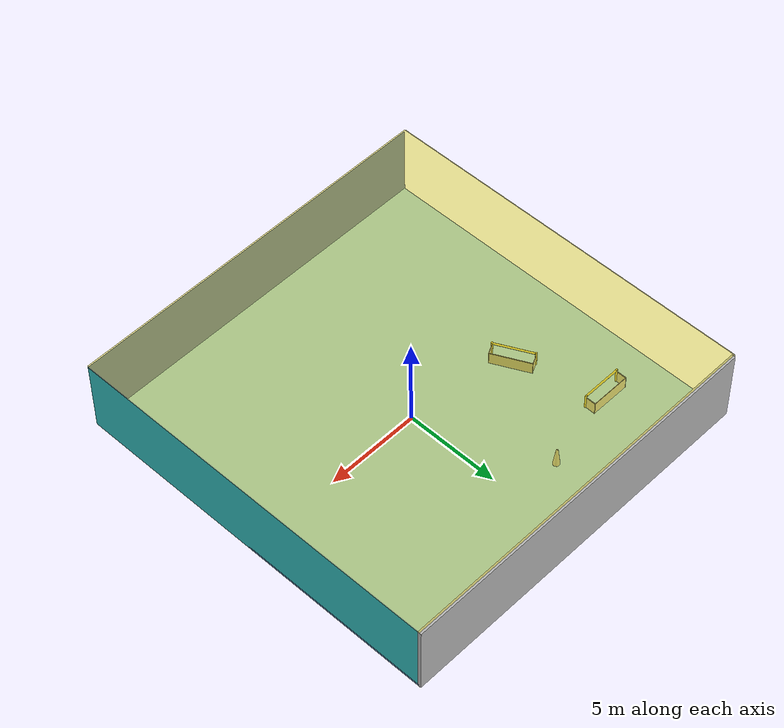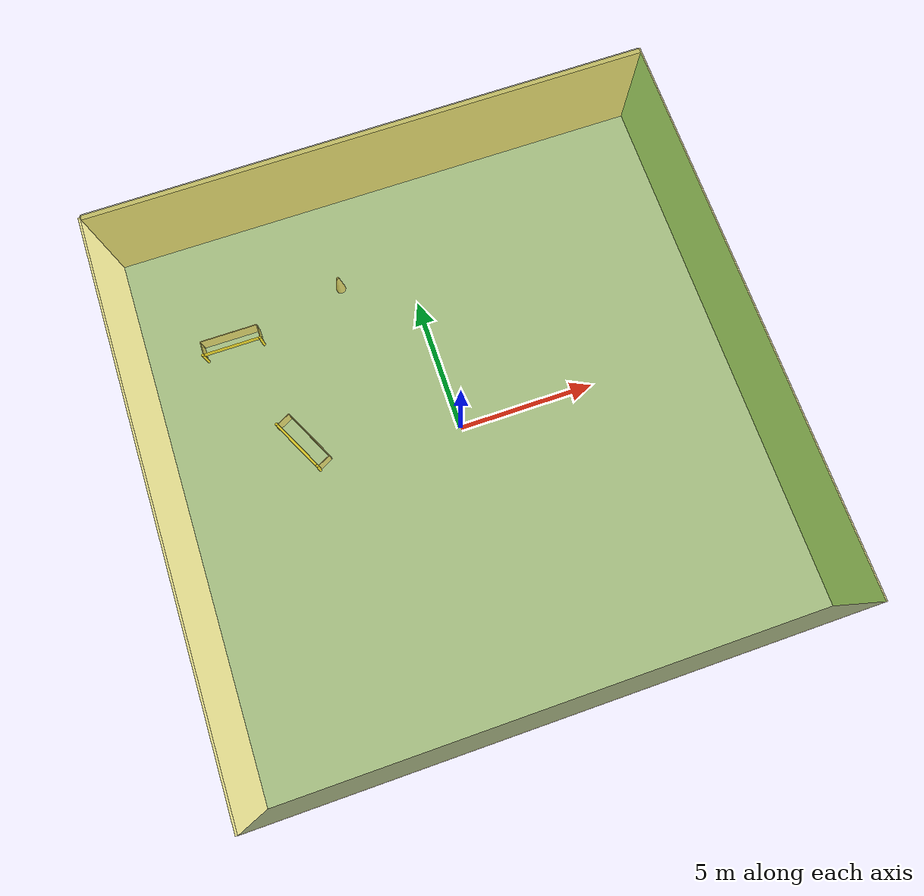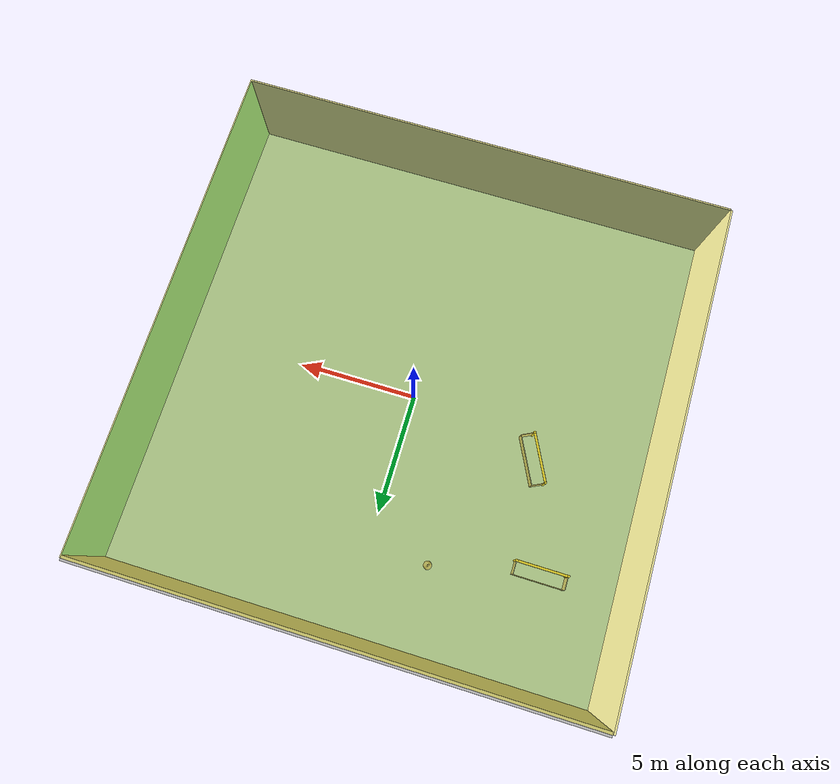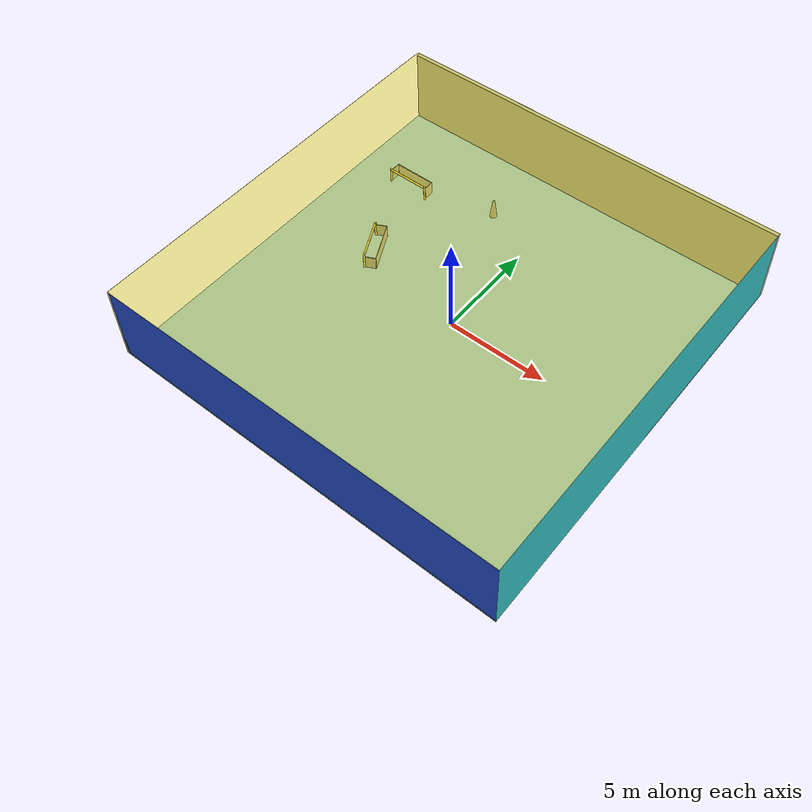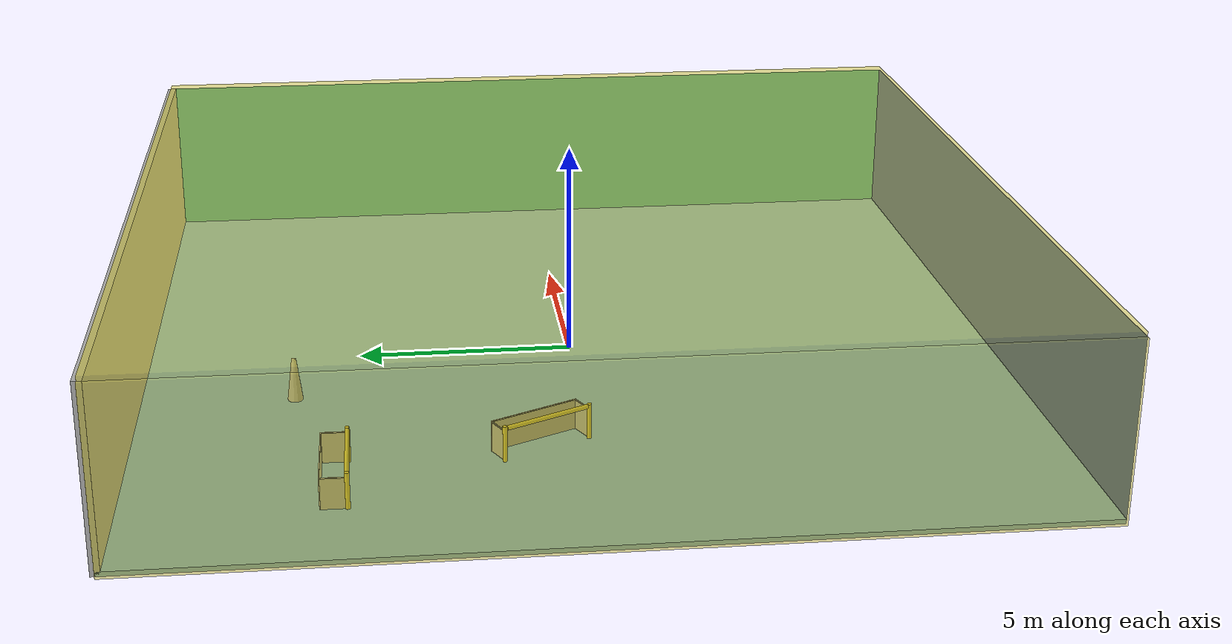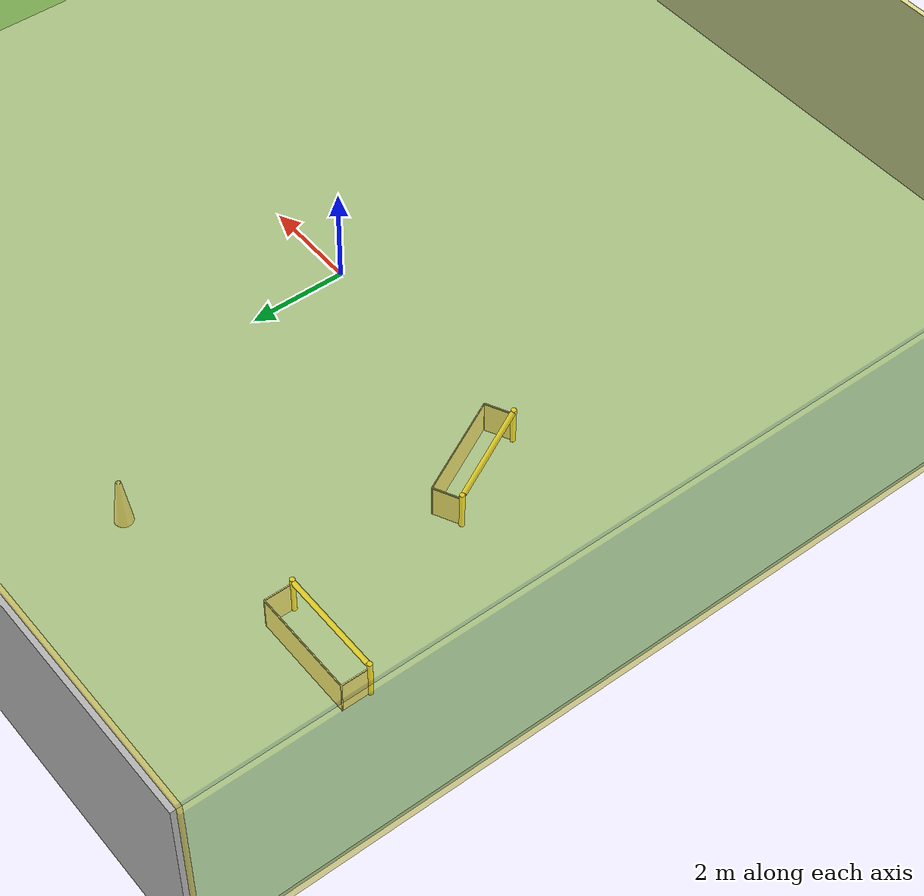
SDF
<sdf version="1.4">
 <world name="default">
  <physics type="ode">
   <max_step_size>0.001</max_step_size>
   <real_time_factor>1</real_time_factor>
   <real_time_update_rate>1000</real_time_update_rate>
   <gravity>0 0 -9.8</gravity>
  </physics>
  <scene><ambient>0.4 0.4 0.4 1</ambient><background>0.7 0.7 0.7 1</background><shadows>1</shadows></scene>
  <model name="Surrounding">
   <static>1</static>
   <link name="Ceiling">
    <collision name="Ceiling_Collision"><geometry><box><size>20 20 0.1</size></box></geometry></collision>
    <visual name="Ceiling_Visual">
     <geometry><box><size>20 20 0.1</size></box></geometry>
     <material>
      <script>
       <uri>file://media/materials/scripts/gazebo.material</uri>
       <name>Gazebo/YellowTransparent</name>
      </script>
     </material>
    </visual>
    <pose>0 0 4.05 0 0 0</pose>
   </link>
   <link name="Wall_South">
    <collision name="Wall_South_Collision">
     <geometry><box><size>20 0 4</size></box></geometry>
     <pose>0 0 2 0 -0 0</pose>
    </collision>
    <visual name="Wall_South_Visual">
     <pose>0 0 2 0 -0 0</pose>
     <geometry><box><size>20 0 4</size></box></geometry>
     <material>
      <script><uri>file://media/materials/scripts/gazebo.material</uri><name>Gazebo/BlueGlow</name></script>
     </material>
    </visual>
    <velocity_decay><linear>0</linear><angular>0</angular></velocity_decay>
    <pose>0 -10 0 0 -0 0</pose>
   </link>
   <link name="Wall_East">
    <collision name="Wall_21_Collision">
     <geometry><box><size>20 0 4</size></box></geometry>
     <pose>0 0 2 0 -0 0</pose>
    </collision>
    <visual name="Wall_21_Visual">
     <pose>0 0 2 0 -0 0</pose>
     <geometry><box><size>20 0 4</size></box></geometry>
     <material>
      <script>
       <uri>file://media/materials/scripts/gazebo.material</uri>
       <name>Gazebo/TurquoiseGlowOutline</name>
      </script>
     </material>
    </visual>
    <velocity_decay><linear>0</linear><angular>0</angular></velocity_decay>
    <pose>10 0 0 0 -0 1.5708</pose>
   </link>
   <link name="Wall_North">
    <collision name="Wall_22_Collision">
     <geometry><box><size>20 0.2 4</size></box></geometry>
     <pose>0 0 2 0 -0 0</pose>
    </collision>
    <visual name="Wall_22_Visual">
     <pose>0 0 2 0 -0 0</pose>
     <geometry><box><size>20 0.2 4</size></box></geometry>
     <material>
      <script><uri>file://media/materials/scripts/gazebo.material</uri><name>Gazebo/LightOn</name></script>
     </material>
    </visual>
    <velocity_decay><linear>0</linear><angular>0</angular></velocity_decay>
    <pose>0 10 0 0 -0 0</pose>
   </link>
   <link name="Wall_West">
    <collision name="Wall_23_Collision">
     <geometry><box><size>20 0.2 4</size></box></geometry>
     <pose>0 0 2 0 -0 0</pose>
    </collision>
    <visual name="Wall_23_Visual">
     <pose>0 0 2 0 -0 0</pose>
     <geometry><box><size>20 0.2 4</size></box></geometry>
     <material>
      <script>
       <uri>file://media/materials/scripts/gazebo.material</uri>
       <name>Gazebo/YellowTransparent</name>
      </script>
     </material>
    </visual>
    <velocity_decay><linear>0</linear><angular>0</angular></velocity_decay>
    <pose>-10 0 0 0 0 -1.5708</pose>
   </link>
   <link name="Ground_link">
    <collision name="collision">
     <pose>0 0 .05 0 -0 0</pose>
     <geometry><box><size>20 20 0.1</size></box></geometry>
    </collision>
    <visual name="visual">
     <pose>0 0 .05 0 -0 0</pose>
     <geometry><box><size>20 20 0.1</size></box></geometry>
     <material>
      <script><uri>file://media/materials/scripts/gazebo.material</uri><name>Gazebo/SkyBlue</name></script>
     </material>
    </visual>
   </link>
   <static>1</static>
  </model>
  <spherical_coordinates>
   <surface_model>EARTH_WGS84</surface_model>
   <latitude_deg>0</latitude_deg>
   <longitude_deg>0</longitude_deg>
   <elevation>0</elevation>
   <heading_deg>0</heading_deg>
  </spherical_coordinates>
  <light name="lightball_0" type="diffuse">
   <diffuse>0.8 0.8 0.8 1</diffuse>
   <specular>0.2 0.2 0.2 1</specular>
   <attenuation>
    <range>100</range>
    <constant>0.7</constant>
    <linear>0.01</linear>
    <quadratic>0.001</quadratic>
   </attenuation>
   <direction>-0.5 0.1 -0.9</direction>
   <pose>0.304020184023 2.25630539531 0.809698346113 0 0 0</pose>
  </light>
  <light name="lightball_1" type="diffuse">
   <diffuse>0.8 0.8 0.8 1</diffuse>
   <specular>0.2 0.2 0.2 1</specular>
   <attenuation>
    <range>100</range>
    <constant>0.7</constant>
    <linear>0.01</linear>
    <quadratic>0.001</quadratic>
   </attenuation>
   <direction>-0.5 0.1 -0.9</direction>
   <pose>1.66893093115 0.936522184332 1.27780610469 0 0 0</pose>
  </light>
  <light name="lightball_2" type="diffuse">
   <diffuse>0.8 0.8 0.8 1</diffuse>
   <specular>0.2 0.2 0.2 1</specular>
   <attenuation>
    <range>100</range>
    <constant>0.7</constant>
    <linear>0.01</linear>
    <quadratic>0.001</quadratic>
   </attenuation>
   <direction>-0.5 0.1 -0.9</direction>
   <pose>-6.35567395549 0.960053771814 3.07221864896 0 0 0</pose>
  </light>
  <include>
   <uri>model://robocup_3Dsim_goal</uri>
   <pose>-6.88338610877 5.27948017241 0 0 0 1.56763644924</pose>
  </include>
  <include>
   <uri>model://robocup_3Dsim_goal</uri>
   <pose>-5.67840593133 1.06393401087 0 0 0 0.461363150582</pose>
  </include>
  <include>
   <uri>model://construction_cone</uri>
   <pose>-2.53191604408 6.46480249487 0 0 0 2.46432056923</pose>
  </include>
 </world>
</sdf>

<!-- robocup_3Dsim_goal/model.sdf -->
<sdf version="1.5">
  <model name="robocup_3d_goal">
    <static>true</static>
    <link name="left_post">
      <pose>0 1.05 0.45 0 0 0</pose>
      <collision name="collision">
        <geometry>
          <cylinder>
            <radius>0.05</radius>
            <length>0.9</length>
          </cylinder>
        </geometry>
      </collision>
      <visual name="visual">
        <geometry>
          <cylinder>
            <radius>0.05</radius>
            <length>0.9</length>
          </cylinder>
        </geometry>
        <material>
          <script>
            <uri>file://media/materials/scripts/gazebo.material</uri>
            <name>Gazebo/ZincYellow</name>
          </script>
        </material>
      </visual>
    </link>
    <link name="left_support_horiz_lower">
      <pose>0.30 1.05 0.01 0 0 0</pose>
      <collision name="collision">
        <geometry>
          <box>
            <size>0.50 0.02 0.02</size>
          </box>
        </geometry>
      </collision>
      <visual name="visual">
        <geometry>
          <box>
            <size>0.50 0.02 0.02</size>
          </box>
        </geometry>
        <material>
          <script>
            <uri>file://media/materials/scripts/gazebo.material</uri>
            <name>Gazebo/White</name>
          </script>
        </material>
      </visual>
    </link>
    <link name="left_support_horiz_upper">
      <pose>0.30 1.05 0.79 0 0 0</pose>
      <collision name="collision">
        <geometry>
          <box>
            <size>0.50 0.02 0.02</size>
          </box>
        </geometry>
      </collision>
      <visual name="visual">
        <geometry>
          <box>
            <size>0.50 0.02 0.02</size>
          </box>
        </geometry>
        <material>
          <script>
            <uri>file://media/materials/scripts/gazebo.material</uri>
            <name>Gazebo/White</name>
          </script>
        </material>
      </visual>
    </link>
    <link name="left_support_vertical">
      <pose>0.56 1.05 0.4 0 1.5708 0</pose>
      <collision name="collision">
        <geometry>
          <box>
            <size>0.80 0.02 0.02</size>
          </box>
        </geometry>
      </collision>
      <visual name="visual">
        <geometry>
          <box>
            <size>0.80 0.02 0.02</size>
          </box>
        </geometry>
        <material>
          <script>
            <uri>file://media/materials/scripts/gazebo.material</uri>
            <name>Gazebo/White</name>
          </script>
        </material>
      </visual>
    </link>
    <link name="right_support_horiz_lower">
      <pose>0.30 -1.05 0.01 0 0 0</pose>
      <collision name="collision">
        <geometry>
          <box>
            <size>0.50 0.02 0.02</size>
          </box>
        </geometry>
      </collision>
      <visual name="visual">
        <geometry>
          <box>
            <size>0.50 0.02 0.02</size>
          </box>
        </geometry>
        <material>
          <script>
            <uri>file://media/materials/scripts/gazebo.material</uri>
            <name>Gazebo/White</name>
          </script>
        </material>
      </visual>
    </link>
    <link name="right_support_horiz_upper">
      <pose>0.30 -1.05 0.79 0 0 0</pose>
      <collision name="collision">
        <geometry>
          <box>
            <size>0.50 0.02 0.02</size>
          </box>
        </geometry>
      </collision>
      <visual name="visual">
        <geometry>
          <box>
            <size>0.50 0.02 0.02</size>
          </box>
        </geometry>
        <material>
          <script>
            <uri>file://media/materials/scripts/gazebo.material</uri>
            <name>Gazebo/White</name>
          </script>
        </material>
      </visual>
    </link>
    <link name="right_support_vertical">
      <pose>0.56 -1.05 0.4 0 1.5708 0</pose>
      <collision name="collision">
        <geometry>
          <box>
            <size>0.80 0.02 0.02</size>
          </box>
        </geometry>
      </collision>
      <visual name="visual">
        <geometry>
          <box>
            <size>0.80 0.02 0.02</size>
          </box>
        </geometry>
        <material>
          <script>
            <uri>file://media/materials/scripts/gazebo.material</uri>
            <name>Gazebo/White</name>
          </script>
        </material>
      </visual>
    </link>
    <link name="center_support_horiz_lower">
      <pose>0.56 0 0.01 0 1.5708 0</pose>
      <collision name="collision">
        <geometry>
          <box>
            <size>0.02 2.08 0.02</size>
          </box>
        </geometry>
      </collision>
      <visual name="visual">
        <geometry>
          <box>
            <size>0.02 2.08 0.02</size>
          </box>
        </geometry>
        <material>
          <script>
            <uri>file://media/materials/scripts/gazebo.material</uri>
            <name>Gazebo/White</name>
          </script>
        </material>
      </visual>
    </link>
    <link name="center_support_horiz_upper">
      <pose>0.56 0 0.79 0 1.5708 0</pose>
      <collision name="collision">
        <geometry>
          <box>
            <size>0.02 2.08 0.02</size>
          </box>
        </geometry>
      </collision>
      <visual name="visual">
        <geometry>
          <box>
            <size>0.02 2.08 0.02</size>
          </box>
        </geometry>
        <material>
          <script>
            <uri>file://media/materials/scripts/gazebo.material</uri>
            <name>Gazebo/White</name>
          </script>
        </material>
      </visual>
    </link>
    <link name="right_post">
      <pose>0 -1.05 0.45 0 0 0</pose>
      <collision name="collision">
        <geometry>
          <cylinder>
            <radius>0.05</radius>
            <length>0.9</length>
          </cylinder>
        </geometry>
      </collision>
      <visual name="visual">
        <geometry>
          <cylinder>
            <radius>0.05</radius>
            <length>0.9</length>
          </cylinder>
        </geometry>
        <material>
          <script>
            <uri>file://media/materials/scripts/gazebo.material</uri>
            <name>Gazebo/ZincYellow</name>
          </script>
        </material>
      </visual>
    </link>
    <link name="crossbar">
      <pose>0 0 0.85 1.57 1.57 0</pose>
      <collision name="collision">
        <geometry>
          <cylinder>
            <radius>0.05</radius>
            <length>2.0</length>
          </cylinder>
        </geometry>
      </collision>
      <visual name="visual">
        <geometry>
          <cylinder>
            <radius>0.05</radius>
            <length>2.0</length>
          </cylinder>
        </geometry>
        <material>
          <script>
            <uri>file://media/materials/scripts/gazebo.material</uri>
            <name>Gazebo/ZincYellow</name>
          </script>
        </material>
      </visual>
    </link>
    <link name="center_net">
      <pose>0.56 0 0.40 0 0 0</pose>
      <collision name="collision">
        <geometry>
          <box>
            <size>0.01 2.1 0.80</size>
          </box>
        </geometry>
      </collision>
      <visual name="visual">
        <geometry>
          <box>
            <size>0.01 2.1 0.80</size>
          </box>
        </geometry>
        <material>
          <script>
            <uri>model://../model_source/models/robocup09_spl_field/materials/scripts/</uri>
            <uri>model://../model_source/models/robocup09_spl_field/materials/textures/</uri>
            <name>RoboCup/Net</name>
          </script>
        </material>
      </visual>
    </link>
    <link name="left_net">
      <pose>0.30 1.05 0.40 0 0 0</pose>
      <collision name="collision">
        <geometry>
          <box>
            <size>0.50 0.01 0.76</size>
          </box>
        </geometry>
      </collision>
      <visual name="visual">
        <geometry>
          <box>
            <size>0.50 0.01 0.76</size>
          </box>
        </geometry>
        <material>
          <script>
            <uri>model://../model_source/models/robocup09_spl_field/materials/scripts/</uri>
            <uri>model://../model_source/models/robocup09_spl_field/materials/textures/</uri>
            <name>RoboCup/Net</name>
          </script>
        </material>
      </visual>
    </link>
    <link name="right_net">
      <pose>0.30 -1.05 0.40 0 0 0</pose>
      <collision name="collision">
        <geometry>
          <box>
            <size>0.50 0.01 0.76</size>
          </box>
        </geometry>
      </collision>
      <visual name="visual">
        <geometry>
          <box>
            <size>0.50 0.01 0.76</size>
          </box>
        </geometry>
        <material>
          <script>
            <uri>model://../model_source/models/robocup09_spl_field/materials/scripts/</uri>
            <uri>model://../model_source/models/robocup09_spl_field/materials/textures/</uri>
            <name>RoboCup/Net</name>
          </script>
        </material>
      </visual>
    </link>
  </model>
</sdf>

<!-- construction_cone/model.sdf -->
<sdf version="1.5">
  <model name="Construction Cone">
    <link name="link">
      <collision name="collision">
        <geometry>
          <mesh>
            <scale>10 10 10</scale>
            <uri>file://isr-testbed/construction_cone/meshes/construction_cone.dae</uri>
          </mesh>
        </geometry>
      </collision>
      <visual name="visual">
        <geometry>
          <mesh>
            <scale>10 10 10</scale>
            <uri>file://isr-testbed/construction_cone/meshes/construction_cone.dae</uri>
          </mesh>
        </geometry>
      </visual>
    </link>
  </model>
</sdf>
